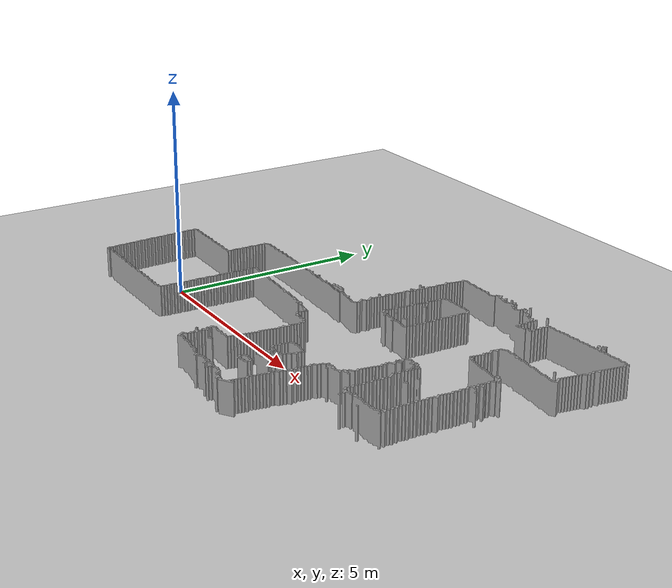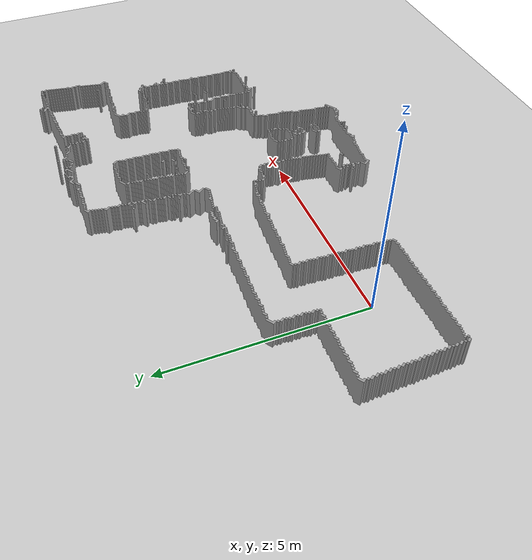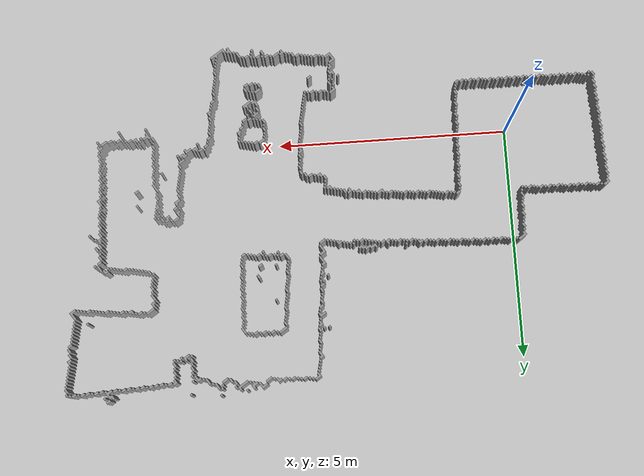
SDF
<sdf version="1.6">
 <world name="default">
  <scene><ambient>0.4 0.4 0.4 1</ambient><background>0.7 0.7 0.7 1</background><shadows>1</shadows></scene>
  <light name="sun" type="directional">
   <pose>0 0 10 0 -0 0</pose>
   <diffuse>0.8 0.8 0.8 1</diffuse>
   <specular>0.1 0.1 0.1 1</specular>
   <attenuation>
    <range>1000</range>
    <constant>0.9</constant>
    <linear>0.01</linear>
    <quadratic>0.001</quadratic>
   </attenuation>
   <direction>-0.5 0.5 -1</direction>
  </light>
  <model name="ground_plane">
   <static>1</static>
   <link name="link">
    <collision name="collision">
     <geometry><plane><normal>0 0 1</normal><size>100 100</size></plane></geometry>
     <surface><friction><ode><mu>100</mu><mu2>50</mu2></ode></friction></surface>
    </collision>
    <visual name="visual">
     <cast_shadows>0</cast_shadows>
     <geometry><plane><normal>0 0 1</normal><size>100 100</size></plane></geometry>
     <material>
      <script><uri>file://media/materials/scripts/gazebo.material</uri><name>Gazebo/Grey</name></script>
     </material>
    </visual>
   </link>
  </model>
  <physics name="default_physics" default="0" type="ode">
   <real_time_update_rate>1000</real_time_update_rate>
   <max_step_size>0.005</max_step_size>
   <real_time_factor>1</real_time_factor>
   <ode>
    <solver>
     <type>quick</type>
     <iters>150</iters>
     <precon_iters>0</precon_iters>
     <sor>1.4</sor>
     <use_dynamic_moi_rescaling>1</use_dynamic_moi_rescaling>
    </solver>
    <constraints>
     <cfm>1e-05</cfm>
     <erp>0.2</erp>
     <contact_max_correcting_vel>2000</contact_max_correcting_vel>
     <contact_surface_layer>0.01</contact_surface_layer>
    </constraints>
   </ode>
  </physics>
  <gravity>0 0 -9.8</gravity>
  <magnetic_field>6e-06 2.3e-05 -4.2e-05</magnetic_field>
  <atmosphere type="adiabatic"/>
  <spherical_coordinates>
   <surface_model>EARTH_WGS84</surface_model>
   <latitude_deg>0</latitude_deg>
   <longitude_deg>0</longitude_deg>
   <elevation>0</elevation>
   <heading_deg>0</heading_deg>
  </spherical_coordinates>
  <model name="house_0">
   <link name="link">
    <pose>5.65344 1.00902 0 0 0 -2.55144</pose>
    <inertial>
     <mass>15</mass>
     <inertia><ixx>0</ixx><ixy>0</ixy><ixz>0</ixz><iyy>0</iyy><iyz>0</iyz><izz>0</izz></inertia>
    </inertial>
    <visual name="visual">
     <geometry><mesh><uri>model://house/meshes/map.stl</uri><scale>1 1 1</scale></mesh></geometry>
     <material>
      <ambient>1 1 1 1</ambient>
      <diffuse>1 1 1 1</diffuse>
      <specular>0 0 0 1</specular>
      <emissive>0 0 0 1</emissive>
      <script><name>vrc/grey_wall</name><uri>__default__</uri></script>
      <shader type="vertex"><normal_map>__default__</normal_map></shader>
     </material>
    </visual>
    <collision name="collision">
     <geometry>
      <mesh><uri>/home/lab301/catkin_ws/src/IV_project/worlds/house/meshes/map.stl</uri><scale>1 1 1</scale></mesh>
     </geometry>
     <surface>
      <friction>
       <ode><mu>1</mu><mu2>1</mu2><fdir1>0 0 0</fdir1><slip1>0</slip1><slip2>0</slip2></ode>
       <torsional>
        <coefficient>1</coefficient>
        <patch_radius>0</patch_radius>
        <surface_radius>0</surface_radius>
        <use_patch_radius>1</use_patch_radius>
        <ode><slip>0</slip></ode>
       </torsional>
      </friction>
      <bounce><restitution_coefficient>0</restitution_coefficient><threshold>1e+06</threshold></bounce>
      <contact>
       <collide_without_contact>0</collide_without_contact>
       <collide_without_contact_bitmask>1</collide_without_contact_bitmask>
       <collide_bitmask>1</collide_bitmask>
       <ode>
        <soft_cfm>0</soft_cfm>
        <soft_erp>0.2</soft_erp>
        <kp>1e+13</kp>
        <kd>1</kd>
        <max_vel>0.01</max_vel>
        <min_depth>0</min_depth>
       </ode>
       <bullet>
        <split_impulse>1</split_impulse>
        <split_impulse_penetration_threshold>-0.01</split_impulse_penetration_threshold>
        <soft_cfm>0</soft_cfm>
        <soft_erp>0.2</soft_erp>
        <kp>1e+13</kp>
        <kd>1</kd>
       </bullet>
      </contact>
     </surface>
    </collision>
   </link>
   <static>1</static>
   <pose>-0.21641 -0.448357 0 0 -0 0</pose>
  </model>
 </world>
</sdf>
